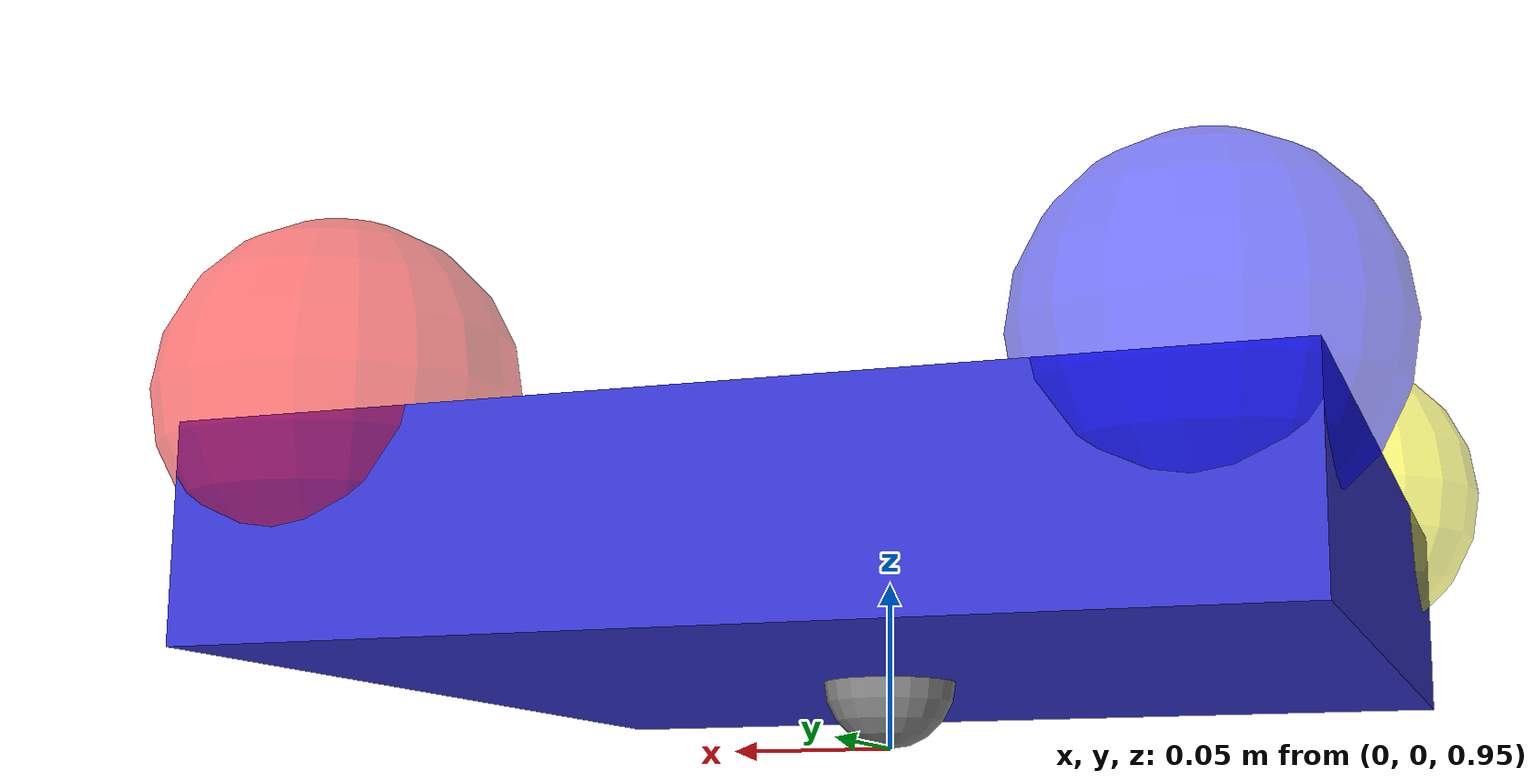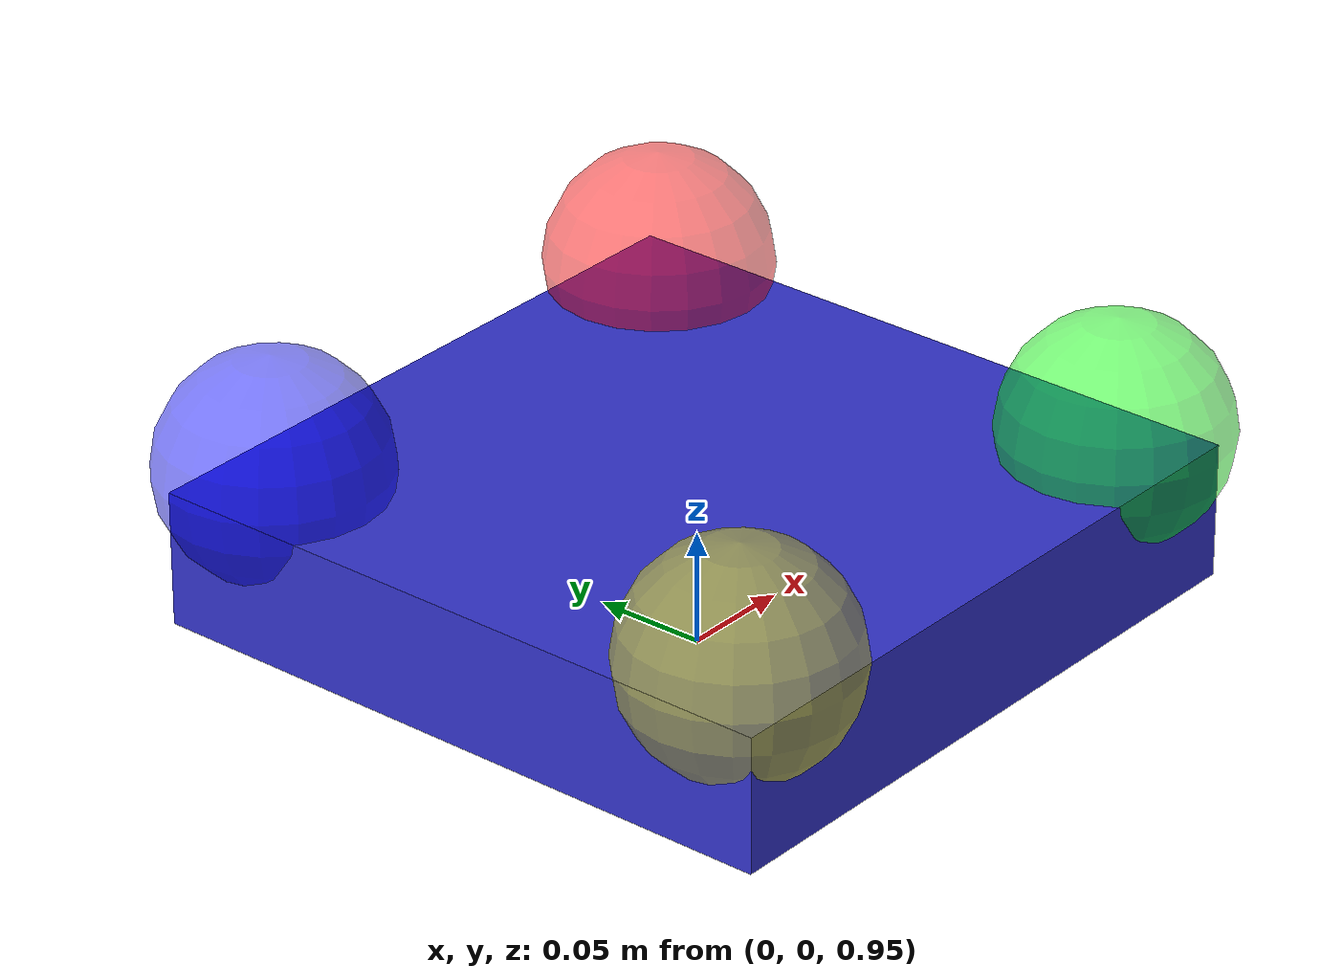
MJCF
<mujoco model="drone_minimal">
  <option timestep="0.002" gravity="0 0 -9.81"/>

  <asset>
    <texture type="skybox" builtin="gradient" rgb1="0.3 0.5 0.7" rgb2="0.0 0.0 0.0" width="512" height="512"/>
    <texture name="grid" type="2d" builtin="checker" rgb1="0.8 0.8 0.8" rgb2="0.6 0.6 0.6" width="256" height="256"/>
    <material name="grid_mat" texture="grid" texrepeat="8 8" reflectance="0.1"/>
  </asset>

  <worldbody>
    <light pos="0 0 3" dir="0 0 -1" diffuse="1 1 1"/>
    <geom type="plane" size="5 5 0.1" material="grid_mat"/>

    <!-- Camera -->
    <camera name="overhead_cam" pos="0 -3 3" xyaxes="1 0 0 0 0.7 0.7"/>

    <!-- Drone body with free joint (6-DOF) -->
    <body name="drone" pos="0 0 1">
      <freejoint name="drone_joint"/>
      <geom type="box" size="0.15 0.15 0.03" rgba="0.2 0.2 0.8 1" mass="1.0"/>

      <!-- Four rotor sites (visual reference) -->
      <site name="rotor_fl" pos="0.12 0.12 0.04" size="0.05" rgba="1 0 0 0.5"/>
      <site name="rotor_fr" pos="0.12 -0.12 0.04" size="0.05" rgba="0 1 0 0.5"/>
      <site name="rotor_bl" pos="-0.12 0.12 0.04" size="0.05" rgba="0 0 1 0.5"/>
      <site name="rotor_br" pos="-0.12 -0.12 0.04" size="0.05" rgba="1 1 0 0.5"/>

      <!-- EE site for ground-truth -->
      <site name="ee_site" pos="0 0 -0.03" size="0.02"/>

      <!-- Sensors -->
      <site name="imu_site" pos="0 0 0"/>
    </body>
  </worldbody>

  <sensor>
    <!-- Position (world frame) -->
    <framepos name="drone_pos" objtype="body" objname="drone"/>
    <!-- Orientation quaternion (world frame) -->
    <framequat name="drone_quat" objtype="body" objname="drone"/>
    <!-- Linear velocity (world frame) -->
    <framelinvel name="drone_linvel" objtype="body" objname="drone"/>
    <!-- Angular velocity (body frame) -->
    <gyro name="drone_gyro" site="imu_site"/>
  </sensor>

  <!-- Actuators: force/torque on the free joint (fx, fy, fz, tx, ty, tz) -->
  <actuator>
    <motor joint="drone_joint" gear="0 0 1 0 0 0" name="thrust_z" ctrlrange="-20 20"/>
    <motor joint="drone_joint" gear="1 0 0 0 0 0" name="force_x" ctrlrange="-5 5"/>
    <motor joint="drone_joint" gear="0 1 0 0 0 0" name="force_y" ctrlrange="-5 5"/>
    <motor joint="drone_joint" gear="0 0 0 1 0 0" name="torque_x" ctrlrange="-2 2"/>
    <motor joint="drone_joint" gear="0 0 0 0 1 0" name="torque_y" ctrlrange="-2 2"/>
    <motor joint="drone_joint" gear="0 0 0 0 0 1" name="torque_z" ctrlrange="-2 2"/>
  </actuator>
</mujoco>
